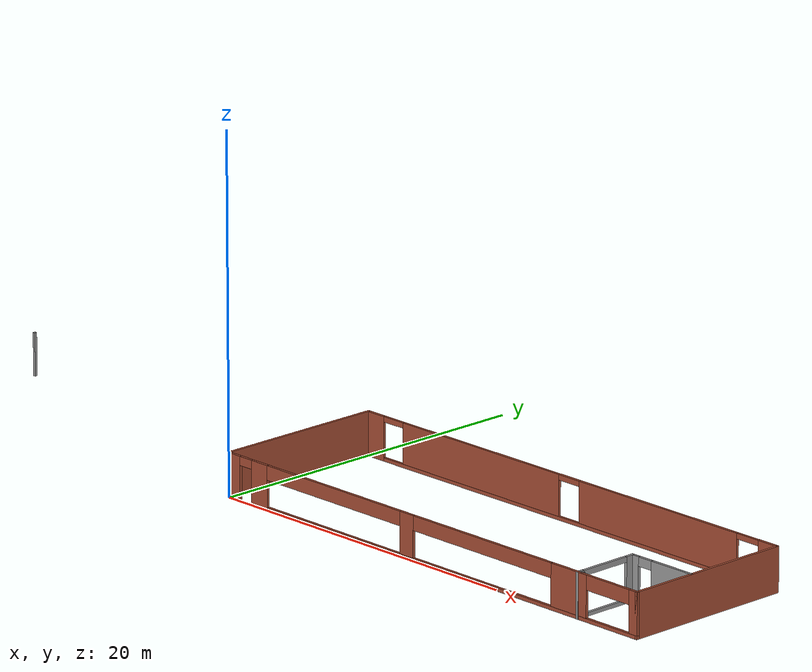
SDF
<?xml version='1.0'?>
<sdf version='1.6'>
  <model name='office'>
    <pose frame=''>3.67575 4.99351 0 0 -0 0</pose>
    <link name='Wall_13'>
      <collision name='Wall_13_Collision'>
        <geometry>
          <box>
            <size>10.15 0.15 2.5</size>
          </box>
        </geometry>
        <pose frame=''>0 0 1.25 0 -0 0</pose>
      </collision>
      <visual name='Wall_13_Visual'>
        <pose frame=''>0 0 1.25 0 -0 0</pose>
        <geometry>
          <box>
            <size>10.15 0.15 2.5</size>
          </box>
        </geometry>
        <material>
          <script>
            <uri>file://media/materials/scripts/gazebo.material</uri>
            <name>Gazebo/Bricks</name>
          </script>
          <ambient>1 1 1 1</ambient>
        </material>
        <meta>
          <layer>0</layer>
        </meta>
      </visual>
      <pose frame=''>-3.67575 0.006489 0 0 -0 1.5708</pose>
    </link>
    <link name='Wall_15'>
      <pose frame=''>11.3242 5.00649 0 0 -0 0</pose>
      <visual name='Wall_15_Visual_0'>
        <pose frame=''>-14.4125 0 1.25 0 -0 0</pose>
        <geometry>
          <box>
            <size>1.325 0.15 2.5</size>
          </box>
        </geometry>
        <material>
          <script>
            <uri>file://media/materials/scripts/gazebo.material</uri>
            <name>Gazebo/Bricks</name>
          </script>
          <ambient>1 1 1 1</ambient>
        </material>
        <meta>
          <layer>0</layer>
        </meta>
      </visual>
      <collision name='Wall_15_Collision_0'>
        <geometry>
          <box>
            <size>1.325 0.15 2.5</size>
          </box>
        </geometry>
        <pose frame=''>-14.4125 0 1.25 0 -0 0</pose>
      </collision>
      <visual name='Wall_15_Visual_1'>
        <pose frame=''>0.6625 0 0.1 0 -0 0</pose>
        <geometry>
          <box>
            <size>28.825 0.15 0.2</size>
          </box>
        </geometry>
        <material>
          <script>
            <uri>file://media/materials/scripts/gazebo.material</uri>
            <name>Gazebo/Bricks</name>
          </script>
          <ambient>1 1 1 1</ambient>
        </material>
        <meta>
          <layer>0</layer>
        </meta>
      </visual>
      <collision name='Wall_15_Collision_1'>
        <geometry>
          <box>
            <size>28.825 0.15 0.2</size>
          </box>
        </geometry>
        <pose frame=''>0.6625 0 0.1 0 -0 0</pose>
      </collision>
      <visual name='Wall_15_Visual_2'>
        <pose frame=''>-6.4 0 1.35 0 -0 0</pose>
        <geometry>
          <box>
            <size>11.7 0.15 2.3</size>
          </box>
        </geometry>
        <material>
          <script>
            <uri>file://media/materials/scripts/gazebo.material</uri>
            <name>Gazebo/Bricks</name>
          </script>
          <ambient>1 1 1 1</ambient>
        </material>
        <meta>
          <layer>0</layer>
        </meta>
      </visual>
      <collision name='Wall_15_Collision_2'>
        <geometry>
          <box>
            <size>11.7 0.15 2.3</size>
          </box>
        </geometry>
        <pose frame=''>-6.4 0 1.35 0 -0 0</pose>
      </collision>
      <visual name='Wall_15_Visual_3'>
        <pose frame=''>6.6 0 1.35 0 -0 0</pose>
        <geometry>
          <box>
            <size>11.3 0.15 2.3</size>
          </box>
        </geometry>
        <material>
          <script>
            <uri>file://media/materials/scripts/gazebo.material</uri>
            <name>Gazebo/Bricks</name>
          </script>
          <ambient>1 1 1 1</ambient>
        </material>
        <meta>
          <layer>0</layer>
        </meta>
      </visual>
      <collision name='Wall_15_Collision_3'>
        <geometry>
          <box>
            <size>11.3 0.15 2.3</size>
          </box>
        </geometry>
        <pose frame=''>6.6 0 1.35 0 -0 0</pose>
      </collision>
      <visual name='Wall_15_Visual_4'>
        <pose frame=''>14.4125 0 1.35 0 -0 0</pose>
        <geometry>
          <box>
            <size>1.325 0.15 2.3</size>
          </box>
        </geometry>
        <material>
          <script>
            <uri>file://media/materials/scripts/gazebo.material</uri>
            <name>Gazebo/Bricks</name>
          </script>
          <ambient>1 1 1 1</ambient>
        </material>
        <meta>
          <layer>0</layer>
        </meta>
      </visual>
      <collision name='Wall_15_Collision_4'>
        <geometry>
          <box>
            <size>1.325 0.15 2.3</size>
          </box>
        </geometry>
        <pose frame=''>14.4125 0 1.35 0 -0 0</pose>
      </collision>
      <visual name='Wall_15_Visual_5'>
        <pose frame=''>-13 0 2.35 0 -0 0</pose>
        <geometry>
          <box>
            <size>1.5 0.15 0.3</size>
          </box>
        </geometry>
        <material>
          <script>
            <uri>file://media/materials/scripts/gazebo.material</uri>
            <name>Gazebo/Bricks</name>
          </script>
          <ambient>1 1 1 1</ambient>
        </material>
        <meta>
          <layer>0</layer>
        </meta>
      </visual>
      <collision name='Wall_15_Collision_5'>
        <geometry>
          <box>
            <size>1.5 0.15 0.3</size>
          </box>
        </geometry>
        <pose frame=''>-13 0 2.35 0 -0 0</pose>
      </collision>
      <visual name='Wall_15_Visual_6'>
        <pose frame=''>0.2 0 2.35 0 -0 0</pose>
        <geometry>
          <box>
            <size>1.5 0.15 0.3</size>
          </box>
        </geometry>
        <material>
          <script>
            <uri>file://media/materials/scripts/gazebo.material</uri>
            <name>Gazebo/Bricks</name>
          </script>
          <ambient>1 1 1 1</ambient>
        </material>
        <meta>
          <layer>0</layer>
        </meta>
      </visual>
      <collision name='Wall_15_Collision_6'>
        <geometry>
          <box>
            <size>1.5 0.15 0.3</size>
          </box>
        </geometry>
        <pose frame=''>0.2 0 2.35 0 -0 0</pose>
      </collision>
      <visual name='Wall_15_Visual_7'>
        <pose frame=''>13 0 2.35 0 -0 0</pose>
        <geometry>
          <box>
            <size>1.5 0.15 0.3</size>
          </box>
        </geometry>
        <material>
          <script>
            <uri>file://media/materials/scripts/gazebo.material</uri>
            <name>Gazebo/Bricks</name>
          </script>
          <ambient>1 1 1 1</ambient>
        </material>
        <meta>
          <layer>0</layer>
        </meta>
      </visual>
      <collision name='Wall_15_Collision_7'>
        <geometry>
          <box>
            <size>1.5 0.15 0.3</size>
          </box>
        </geometry>
        <pose frame=''>13 0 2.35 0 -0 0</pose>
      </collision>
    </link>
    <link name='Wall_16'>
      <collision name='Wall_16_Collision'>
        <geometry>
          <box>
            <size>10.15 0.15 2.5</size>
          </box>
        </geometry>
        <pose frame=''>0 0 1.25 0 -0 0</pose>
      </collision>
      <visual name='Wall_16_Visual'>
        <pose frame=''>0 0 1.25 0 -0 0</pose>
        <geometry>
          <box>
            <size>10.15 0.15 2.5</size>
          </box>
        </geometry>
        <material>
          <script>
            <uri>file://media/materials/scripts/gazebo.material</uri>
            <name>Gazebo/Bricks</name>
          </script>
          <ambient>1 1 1 1</ambient>
        </material>
        <meta>
          <layer>0</layer>
        </meta>
      </visual>
      <pose frame=''>26.3242 0.006489 0 0 0 -1.5708</pose>
    </link>
    <link name='Wall_19'>
      <collision name='Wall_19_Collision'>
        <geometry>
          <box>
            <size>0.15 0.15 2.5</size>
          </box>
        </geometry>
        <pose frame=''>0 0 1.25 0 -0 0</pose>
      </collision>
      <visual name='Wall_19_Visual'>
        <pose frame=''>0 0 1.25 0 -0 0</pose>
        <geometry>
          <box>
            <size>0.15 0.15 2.5</size>
          </box>
        </geometry>
        <material>
          <script>
            <uri>file://media/materials/scripts/gazebo.material</uri>
            <name>Gazebo/Grey</name>
          </script>
          <ambient>1 1 1 1</ambient>
        </material>
        <meta>
          <layer>0</layer>
        </meta>
      </visual>
      <pose frame=''>22.4116 -4.87772 0 0 -0 0</pose>
    </link>
    <link name='Wall_21'>
      <pose frame=''>11.3242 -4.99351 0 0 -0 0</pose>
      <visual name='Wall_21_Visual_0'>
        <pose frame=''>-14.5861 0 1.25 0 -0 0</pose>
        <geometry>
          <box>
            <size>0.977872 0.15 2.5</size>
          </box>
        </geometry>
        <material>
          <script>
            <uri>file://media/materials/scripts/gazebo.material</uri>
            <name>Gazebo/Bricks</name>
          </script>
          <ambient>1 1 1 1</ambient>
        </material>
        <meta>
          <layer>0</layer>
        </meta>
      </visual>
      <collision name='Wall_21_Collision_0'>
        <geometry>
          <box>
            <size>0.977872 0.15 2.5</size>
          </box>
        </geometry>
        <pose frame=''>-14.5861 0 1.25 0 -0 0</pose>
      </collision>
      <visual name='Wall_21_Visual_1'>
        <pose frame=''>-12.5986 0 1.25 0 -0 0</pose>
        <geometry>
          <box>
            <size>1.19713 0.15 2.5</size>
          </box>
        </geometry>
        <material>
          <script>
            <uri>file://media/materials/scripts/gazebo.material</uri>
            <name>Gazebo/Bricks</name>
          </script>
          <ambient>1 1 1 1</ambient>
        </material>
        <meta>
          <layer>0</layer>
        </meta>
      </visual>
      <collision name='Wall_21_Collision_1'>
        <geometry>
          <box>
            <size>1.19713 0.15 2.5</size>
          </box>
        </geometry>
        <pose frame=''>-12.5986 0 1.25 0 -0 0</pose>
      </collision>
      <visual name='Wall_21_Visual_2'>
        <pose frame=''>1.5375 0 0.1 0 -0 0</pose>
        <geometry>
          <box>
            <size>27.075 0.15 0.2</size>
          </box>
        </geometry>
        <material>
          <script>
            <uri>file://media/materials/scripts/gazebo.material</uri>
            <name>Gazebo/Bricks</name>
          </script>
          <ambient>1 1 1 1</ambient>
        </material>
        <meta>
          <layer>0</layer>
        </meta>
      </visual>
      <collision name='Wall_21_Collision_2'>
        <geometry>
          <box>
            <size>27.075 0.15 0.2</size>
          </box>
        </geometry>
        <pose frame=''>1.5375 0 0.1 0 -0 0</pose>
      </collision>
      <visual name='Wall_21_Visual_3'>
        <pose frame=''>-1.5 0 1.35 0 -0 0</pose>
        <geometry>
          <box>
            <size>1 0.15 2.3</size>
          </box>
        </geometry>
        <material>
          <script>
            <uri>file://media/materials/scripts/gazebo.material</uri>
            <name>Gazebo/Bricks</name>
          </script>
          <ambient>1 1 1 1</ambient>
        </material>
        <meta>
          <layer>0</layer>
        </meta>
      </visual>
      <collision name='Wall_21_Collision_3'>
        <geometry>
          <box>
            <size>1 0.15 2.3</size>
          </box>
        </geometry>
        <pose frame=''>-1.5 0 1.35 0 -0 0</pose>
      </collision>
      <visual name='Wall_21_Visual_4'>
        <pose frame=''>10.2486 0 1.35 0 -0 0</pose>
        <geometry>
          <box>
            <size>2.49712 0.15 2.3</size>
          </box>
        </geometry>
        <material>
          <script>
            <uri>file://media/materials/scripts/gazebo.material</uri>
            <name>Gazebo/Bricks</name>
          </script>
          <ambient>1 1 1 1</ambient>
        </material>
        <meta>
          <layer>0</layer>
        </meta>
      </visual>
      <collision name='Wall_21_Collision_4'>
        <geometry>
          <box>
            <size>2.49712 0.15 2.3</size>
          </box>
        </geometry>
        <pose frame=''>10.2486 0 1.35 0 -0 0</pose>
      </collision>
      <visual name='Wall_21_Visual_5'>
        <pose frame=''>14.7861 0 1.35 0 -0 0</pose>
        <geometry>
          <box>
            <size>0.577882 0.15 2.3</size>
          </box>
        </geometry>
        <material>
          <script>
            <uri>file://media/materials/scripts/gazebo.material</uri>
            <name>Gazebo/Bricks</name>
          </script>
          <ambient>1 1 1 1</ambient>
        </material>
        <meta>
          <layer>0</layer>
        </meta>
      </visual>
      <collision name='Wall_21_Collision_5'>
        <geometry>
          <box>
            <size>0.577882 0.15 2.3</size>
          </box>
        </geometry>
        <pose frame=''>14.7861 0 1.35 0 -0 0</pose>
      </collision>
      <visual name='Wall_21_Visual_6'>
        <pose frame=''>-7 0 2.1 0 -0 0</pose>
        <geometry>
          <box>
            <size>10 0.15 0.8</size>
          </box>
        </geometry>
        <material>
          <script>
            <uri>file://media/materials/scripts/gazebo.material</uri>
            <name>Gazebo/Bricks</name>
          </script>
          <ambient>1 1 1 1</ambient>
        </material>
        <meta>
          <layer>0</layer>
        </meta>
      </visual>
      <collision name='Wall_21_Collision_6'>
        <geometry>
          <box>
            <size>10 0.15 0.8</size>
          </box>
        </geometry>
        <pose frame=''>-7 0 2.1 0 -0 0</pose>
      </collision>
      <visual name='Wall_21_Visual_7'>
        <pose frame=''>4 0 2.1 0 -0 0</pose>
        <geometry>
          <box>
            <size>10 0.15 0.8</size>
          </box>
        </geometry>
        <material>
          <script>
            <uri>file://media/materials/scripts/gazebo.material</uri>
            <name>Gazebo/Bricks</name>
          </script>
          <ambient>1 1 1 1</ambient>
        </material>
        <meta>
          <layer>0</layer>
        </meta>
      </visual>
      <collision name='Wall_21_Collision_7'>
        <geometry>
          <box>
            <size>10 0.15 0.8</size>
          </box>
        </geometry>
        <pose frame=''>4 0 2.1 0 -0 0</pose>
      </collision>
      <visual name='Wall_21_Visual_8'>
        <pose frame=''>12.9971 0 2.1 0 -0 0</pose>
        <geometry>
          <box>
            <size>3 0.15 0.8</size>
          </box>
        </geometry>
        <material>
          <script>
            <uri>file://media/materials/scripts/gazebo.material</uri>
            <name>Gazebo/Bricks</name>
          </script>
          <ambient>1 1 1 1</ambient>
        </material>
        <meta>
          <layer>0</layer>
        </meta>
      </visual>
      <collision name='Wall_21_Collision_8'>
        <geometry>
          <box>
            <size>3 0.15 0.8</size>
          </box>
        </geometry>
        <pose frame=''>12.9971 0 2.1 0 -0 0</pose>
      </collision>
      <visual name='Wall_21_Visual_9'>
        <pose frame=''>-13.6471 0 2.25 0 -0 0</pose>
        <geometry>
          <box>
            <size>0.9 0.15 0.5</size>
          </box>
        </geometry>
        <material>
          <script>
            <uri>file://media/materials/scripts/gazebo.material</uri>
            <name>Gazebo/Bricks</name>
          </script>
          <ambient>1 1 1 1</ambient>
        </material>
        <meta>
          <layer>0</layer>
        </meta>
      </visual>
      <collision name='Wall_21_Collision_9'>
        <geometry>
          <box>
            <size>0.9 0.15 0.5</size>
          </box>
        </geometry>
        <pose frame=''>-13.6471 0 2.25 0 -0 0</pose>
      </collision>
    </link>
    <link name='Wall_23'>
      <pose frame=''>22.1935 -3.08149 0 0 -0 1.5708</pose>
      <visual name='Wall_23_Visual_0'>
        <pose frame=''>-1.78202 0 1.25 0 -0 0</pose>
        <geometry>
          <box>
            <size>0.435956 0.15 2.5</size>
          </box>
        </geometry>
        <material>
          <script>
            <uri>file://media/materials/scripts/gazebo.material</uri>
            <name>Gazebo/Grey</name>
          </script>
          <ambient>1 1 1 1</ambient>
        </material>
        <meta>
          <layer>0</layer>
        </meta>
      </visual>
      <collision name='Wall_23_Collision_0'>
        <geometry>
          <box>
            <size>0.435956 0.15 2.5</size>
          </box>
        </geometry>
        <pose frame=''>-1.78202 0 1.25 0 -0 0</pose>
      </collision>
      <visual name='Wall_23_Visual_1'>
        <pose frame=''>0.217978 0 0.1 0 -0 0</pose>
        <geometry>
          <box>
            <size>3.56404 0.15 0.2</size>
          </box>
        </geometry>
        <material>
          <script>
            <uri>file://media/materials/scripts/gazebo.material</uri>
            <name>Gazebo/Grey</name>
          </script>
          <ambient>1 1 1 1</ambient>
        </material>
        <meta>
          <layer>0</layer>
        </meta>
      </visual>
      <collision name='Wall_23_Collision_1'>
        <geometry>
          <box>
            <size>3.56404 0.15 0.2</size>
          </box>
        </geometry>
        <pose frame=''>0.217978 0 0.1 0 -0 0</pose>
      </collision>
      <visual name='Wall_23_Visual_2'>
        <pose frame=''>1.71798 0 1.35 0 -0 0</pose>
        <geometry>
          <box>
            <size>0.564044 0.15 2.3</size>
          </box>
        </geometry>
        <material>
          <script>
            <uri>file://media/materials/scripts/gazebo.material</uri>
            <name>Gazebo/Grey</name>
          </script>
          <ambient>1 1 1 1</ambient>
        </material>
        <meta>
          <layer>0</layer>
        </meta>
      </visual>
      <collision name='Wall_23_Collision_2'>
        <geometry>
          <box>
            <size>0.564044 0.15 2.3</size>
          </box>
        </geometry>
        <pose frame=''>1.71798 0 1.35 0 -0 0</pose>
      </collision>
      <visual name='Wall_23_Visual_3'>
        <pose frame=''>-0.064044 0 2.35 0 -0 0</pose>
        <geometry>
          <box>
            <size>3 0.15 0.3</size>
          </box>
        </geometry>
        <material>
          <script>
            <uri>file://media/materials/scripts/gazebo.material</uri>
            <name>Gazebo/Grey</name>
          </script>
          <ambient>1 1 1 1</ambient>
        </material>
        <meta>
          <layer>0</layer>
        </meta>
      </visual>
      <collision name='Wall_23_Collision_3'>
        <geometry>
          <box>
            <size>3 0.15 0.3</size>
          </box>
        </geometry>
        <pose frame=''>-0.064044 0 2.35 0 -0 0</pose>
      </collision>
    </link>
    <link name='Wall_24'>
      <pose frame=''>24.2435 -1.15649 0 0 -0 0</pose>
      <visual name='Wall_24_Visual_0'>
        <pose frame=''>-1.84726 0 1.25 0 -0 0</pose>
        <geometry>
          <box>
            <size>0.555478 0.15 2.5</size>
          </box>
        </geometry>
        <material>
          <script>
            <uri>file://media/materials/scripts/gazebo.material</uri>
            <name>Gazebo/Grey</name>
          </script>
          <ambient>1 1 1 1</ambient>
        </material>
        <meta>
          <layer>0</layer>
        </meta>
      </visual>
      <collision name='Wall_24_Collision_0'>
        <geometry>
          <box>
            <size>0.555478 0.15 2.5</size>
          </box>
        </geometry>
        <pose frame=''>-1.84726 0 1.25 0 -0 0</pose>
      </collision>
      <visual name='Wall_24_Visual_1'>
        <pose frame=''>0.727739 0 1.25 0 -0 0</pose>
        <geometry>
          <box>
            <size>2.79452 0.15 2.5</size>
          </box>
        </geometry>
        <material>
          <script>
            <uri>file://media/materials/scripts/gazebo.material</uri>
            <name>Gazebo/Grey</name>
          </script>
          <ambient>1 1 1 1</ambient>
        </material>
        <meta>
          <layer>0</layer>
        </meta>
      </visual>
      <collision name='Wall_24_Collision_1'>
        <geometry>
          <box>
            <size>2.79452 0.15 2.5</size>
          </box>
        </geometry>
        <pose frame=''>0.727739 0 1.25 0 -0 0</pose>
      </collision>
      <visual name='Wall_24_Visual_2'>
        <pose frame=''>-1.11952 0 2.25 0 -0 0</pose>
        <geometry>
          <box>
            <size>0.9 0.15 0.5</size>
          </box>
        </geometry>
        <material>
          <script>
            <uri>file://media/materials/scripts/gazebo.material</uri>
            <name>Gazebo/Grey</name>
          </script>
          <ambient>1 1 1 1</ambient>
        </material>
        <meta>
          <layer>0</layer>
        </meta>
      </visual>
      <collision name='Wall_24_Collision_2'>
        <geometry>
          <box>
            <size>0.9 0.15 0.5</size>
          </box>
        </geometry>
        <pose frame=''>-1.11952 0 2.25 0 -0 0</pose>
      </collision>
    </link>
    <link name='Wall_4'>
      <collision name='Wall_4_Collision'>
        <geometry>
          <box>
            <size>0.15 0.15 2.5</size>
          </box>
        </geometry>
        <pose frame=''>0 0 1.25 0 -0 0</pose>
      </collision>
      <visual name='Wall_4_Visual'>
        <pose frame=''>0 0 1.25 0 -0 0</pose>
        <geometry>
          <box>
            <size>0.15 0.15 2.5</size>
          </box>
        </geometry>
        <material>
          <script>
            <uri>file://media/materials/scripts/gazebo.material</uri>
            <name>Gazebo/Grey</name>
          </script>
          <ambient>1 1 1 1</ambient>
        </material>
        <meta>
          <layer>0</layer>
        </meta>
      </visual>
      <pose frame=''>-26.3242 1.1762 0 0 -0 0</pose>
    </link>
    <static>1</static>
  </model>
</sdf>
